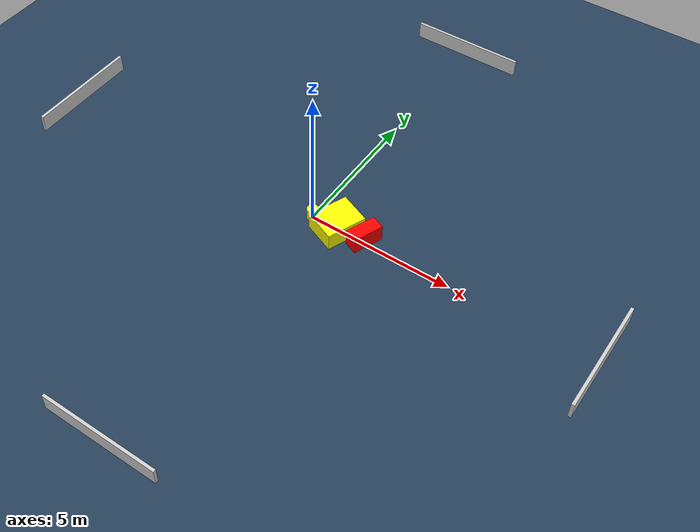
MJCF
<?xml version="1.0" ?>
<mujoco model="generated_environment">
  <option timestep="0.01" integrator="RK4" cone="elliptic"/>
  <default>
    <geom density="1"/>
  </default>
  <asset>
    <texture builtin="gradient" height="3072" name="skybox" rgb1="0.3 0.5 0.7" rgb2="0 0 0" type="skybox" width="512"/>
    <texture builtin="checker" height="300" name="groundplane" rgb1="0.2 0.3 0.4" rgb2="0.1 0.2 0.3" type="2d" width="300"/>
    <material name="groundplane" reflectance="0.2" texrepeat="5 5" texture="groundplane"/>
  </asset>
  <worldbody>
    <light dir="0 0 -1" directional="true" pos="0 0 1.5"/>
    <geom condim="3" friction="0.5 0.005 0.001" material="groundplane" name="floor" pos="0 0 0" size="0 0 0.05" type="plane"/>
    <body name="walls">
      <geom name="wall_1" condim="4" pos="-10.0 0.0 0.3" rgba="0.800000011920929 0.800000011920929 0.800000011920929 1.0" size="0.05 2.0 0.3" type="box"/>
      <geom name="wall_2" condim="4" pos="10.0 0.0 0.3" rgba="0.800000011920929 0.800000011920929 0.800000011920929 1.0" size="0.05 2.0 0.3" type="box"/>
      <geom name="wall_3" condim="4" pos="0.0 -10.0 0.3" rgba="0.800000011920929 0.800000011920929 0.800000011920929 1.0" size="2.0 0.05 0.3" type="box"/>
      <geom name="wall_4" condim="4" pos="0.0 10.0 0.3" rgba="0.800000011920929 0.800000011920929 0.800000011920929 1.0" size="2.0 0.05 0.3" type="box"/>
    </body>
    <body name="robot">
      <joint name="joint_x" type="slide" pos="0 0 0" axis="1 0 0"/>
      <joint name="joint_y" type="slide" pos="0 0 0" axis="0 1 0"/>
      <geom name="robot" type="cylinder" pos="0.0 0.0 0.2" size="0.2 0.2 0.0" mass="5.0" friction="1.0 0.005 0.0001" condim="4" rgba="1.0 1.0 0.0 1.0"/>
    </body>
    <body name="obstacle_1_movable">
      <geom name="obstacle_1_movable" condim="4" pos="0.9148689483353886 0.024581166326006 0.3" euler="0 0 337.9322789240721" friction="0.0 0.005 0.001" rgba="1.0 1.0 0.0 1.0" size="0.5594554382229442 0.694623600673768 0.3" type="box" mass="0.1"/>
      <joint type="free"/>
    </body>
    <body name="obstacle_2_static">
      <geom name="obstacle_2_static" condim="4" pos="1.8970171643334723 0.08631756931272021 0.3" euler="0 0 338.2719623201447" friction="0.0 0.005 0.001" rgba="1.0 0.0 0.0 1.0" size="0.2452017296052891 0.5227830208475636 0.3" type="box"/>
    </body>
  </worldbody>
  <actuator>
    <motor name="actuator_x" joint="joint_x" gear="1" ctrlrange="-1 1"/>
    <motor name="actuator_y" joint="joint_y" gear="1" ctrlrange="-1 1"/>
  </actuator>
</mujoco>
